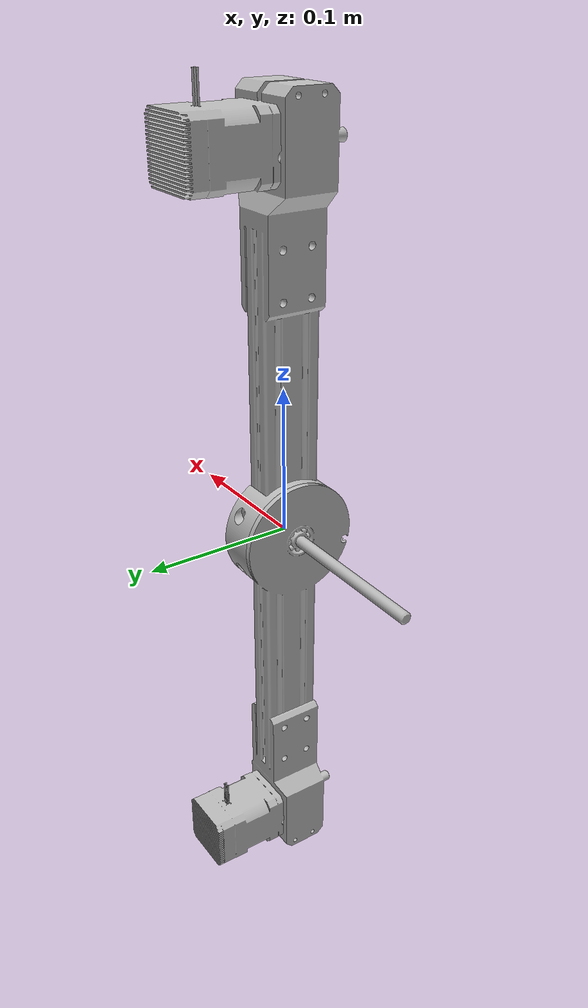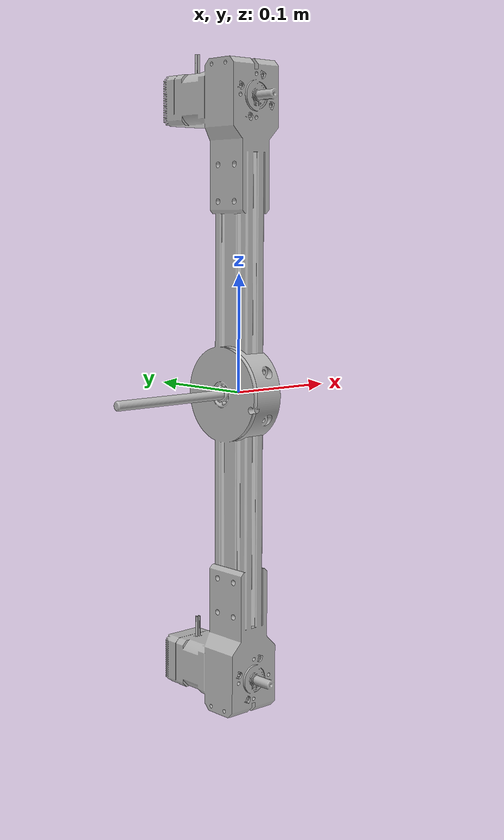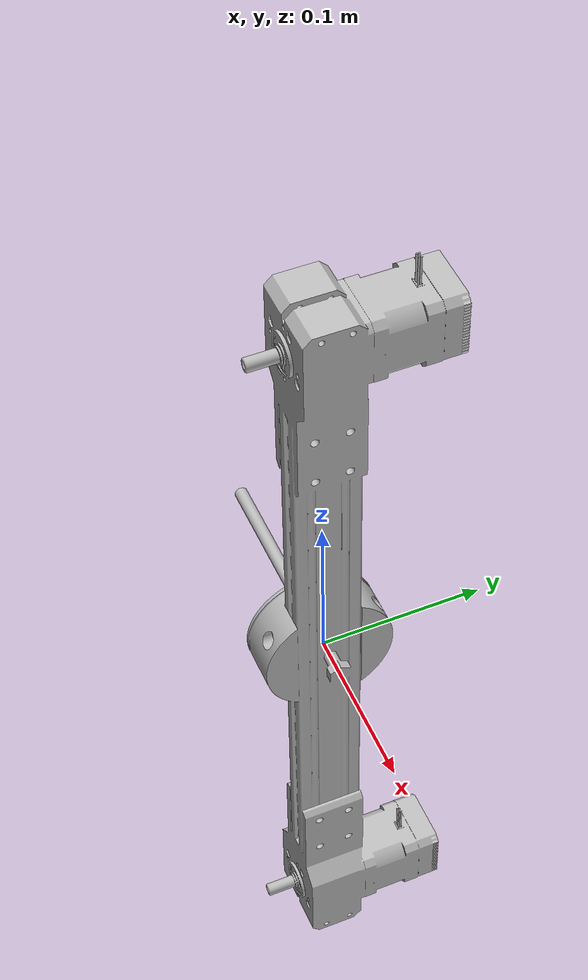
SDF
<?xml version="1.0"?>
<sdf version="1.9">
  <model name="rocker_assembly">
    <static>false</static>
    <link name="link">
      <inertial>
        <mass>1.876177</mass>
        <pose>-0.001617 0.010978 0.000021 0 0 0</pose>
        <inertia>
          <ixx>7.72711240e-02</ixx>
          <ixy>-3.19059468e-05</ixy>
          <ixz>2.50959518e-07</ixz>
          <iyy>7.64727189e-02</iyy>
          <iyz>-1.48173559e-06</iyz>
          <izz>1.50561036e-03</izz>
        </inertia>
      </inertial>
      <visual name="visual">
        <geometry>
          <mesh>
            <uri>model://rocker_assembly/meshes/rocker_assembly.stl</uri>
            <scale>0.001 0.001 0.001</scale>
          </mesh>
        </geometry>
      </visual>
      <collision name="collision">
        <geometry>
          <mesh>
            <uri>model://rocker_assembly/meshes/rocker_assembly.stl</uri>
            <scale>0.001 0.001 0.001</scale>
          </mesh>
        </geometry>
      </collision>
    </link>
  </model>
</sdf>
